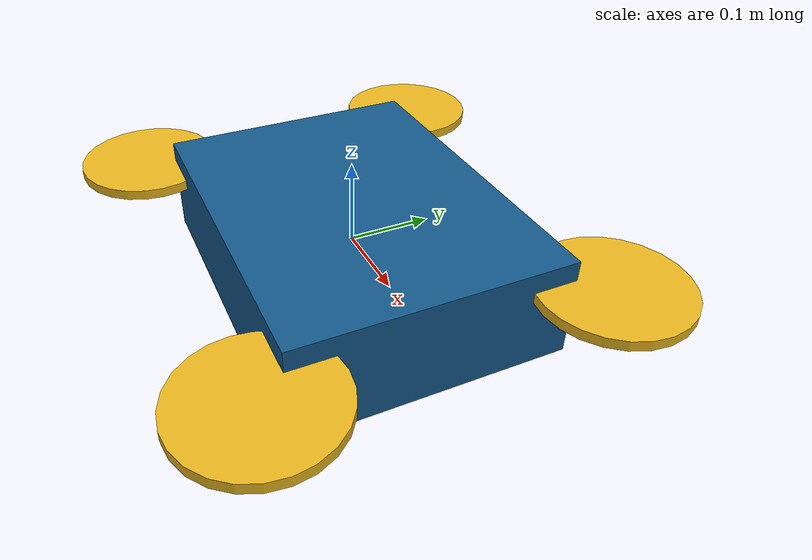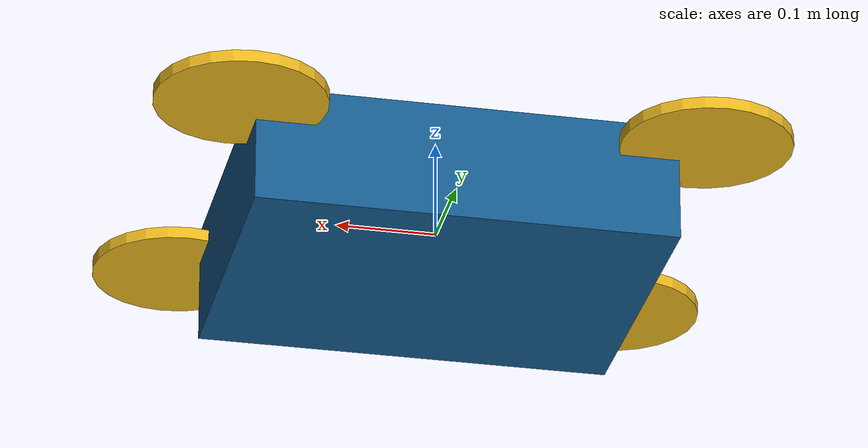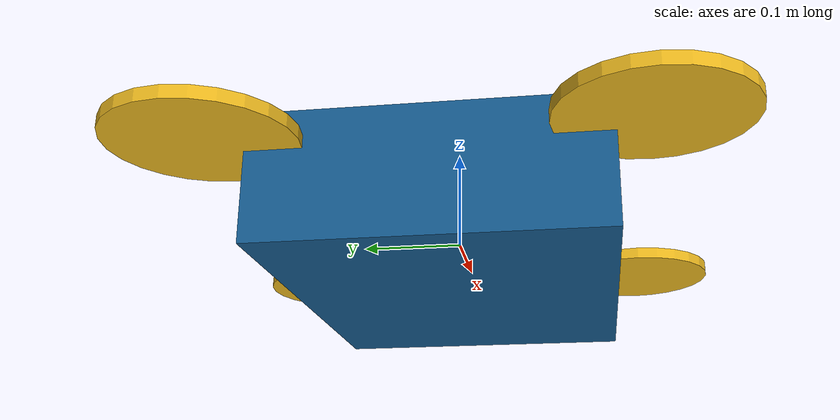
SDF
<?xml version="1.0" ?>
<sdf version="1.8">
  <model name="ed_quadrotor">
    <pose>0 0 0 0 0 0</pose>
    <link name="base_link">
      <inertial>
        <mass>1.5</mass>
        <inertia>
          <ixx>0.035</ixx><iyy>0.035</iyy><izz>0.065</izz>
          <ixy>0</ixy><ixz>0</ixz><iyz>0</iyz>
        </inertia>
      </inertial>
      <collision name="body_collision">
        <geometry><box><size>0.42 0.32 0.12</size></box></geometry>
      </collision>
      <visual name="body_visual">
        <geometry><box><size>0.42 0.32 0.12</size></box></geometry>
        <material><ambient>0.06 0.18 0.28 1</ambient><diffuse>0.08 0.35 0.55 1</diffuse></material>
      </visual>
      <sensor name="narrow_camera" type="camera">
        <!-- Camera placed well outside body box (0.42x0.32x0.12) to avoid occlusion -->
        <pose>0.28 0.22 -0.10 0 1.5708 0</pose>
        <always_on>true</always_on><update_rate>15</update_rate><visualize>true</visualize>
        <topic>/camera/narrow/image_raw</topic>
        <ignition_frame_id>camera_narrow_optical_frame</ignition_frame_id>
        <camera>
          <horizontal_fov>1.05</horizontal_fov>
          <camera_info_topic>/camera/narrow/camera_info</camera_info_topic>
          <image><width>1280</width><height>960</height><format>R8G8B8</format></image>
          <clip><near>0.05</near><far>80</far></clip>
        </camera>
      </sensor>
      <sensor name="wide_camera" type="camera">
        <pose>-0.28 -0.22 -0.10 0 1.5708 0</pose>
        <always_on>true</always_on><update_rate>10</update_rate><visualize>true</visualize>
        <topic>/camera/wide/image_raw</topic>
        <ignition_frame_id>camera_wide_optical_frame</ignition_frame_id>
        <camera>
          <horizontal_fov>1.75</horizontal_fov>
          <camera_info_topic>/camera/wide/camera_info</camera_info_topic>
          <image><width>1280</width><height>720</height><format>R8G8B8</format></image>
          <clip><near>0.05</near><far>80</far></clip>
        </camera>
      </sensor>
      <sensor name="lidar" type="gpu_lidar">
        <pose>0.12 0 0.08 0 0 0</pose>
        <always_on>true</always_on><update_rate>10</update_rate><visualize>true</visualize>
        <topic>/lidar/points</topic>
        <ignition_frame_id>lidar_link</ignition_frame_id>
        <ray>
          <scan><horizontal><samples>360</samples><resolution>1</resolution><min_angle>-3.14159</min_angle><max_angle>3.14159</max_angle></horizontal><vertical><samples>1</samples><resolution>1</resolution><min_angle>0</min_angle><max_angle>0</max_angle></vertical></scan>
          <range><min>0.15</min><max>30</max><resolution>0.02</resolution></range>
        </ray>
      </sensor>
      <sensor name="lidar_imu" type="imu">
        <pose>0.12 0 0.08 0 0 0</pose>
        <always_on>true</always_on><update_rate>100</update_rate>
        <topic>/lidar/imu</topic>
        <ignition_frame_id>lidar_link</ignition_frame_id>
      </sensor>
      <sensor name="rangefinder" type="ray">
        <!-- Gazebo ray axis is +X; +90deg pitch points it down along -Z. -->
        <pose>0 0 -0.10 0 1.5708 0</pose>
        <always_on>true</always_on><update_rate>20</update_rate>
        <topic>/rangefinder/range</topic>
        <ray><scan><horizontal><samples>1</samples><resolution>1</resolution><min_angle>0</min_angle><max_angle>0</max_angle></horizontal></scan><range><min>0.08</min><max>8.0</max><resolution>0.01</resolution></range></ray>
      </sensor>
    </link>

    <link name="rotor_0"><pose>0.23 0.19 0.03 0 0 0</pose><inertial><mass>0.02</mass><inertia><ixx>0.00001</ixx><iyy>0.00001</iyy><izz>0.00001</izz><ixy>0</ixy><ixz>0</ixz><iyz>0</iyz></inertia></inertial><visual name="rotor_0_visual"><geometry><cylinder><radius>0.085</radius><length>0.012</length></cylinder></geometry><material><diffuse>0.92 0.72 0.12 1</diffuse></material></visual></link>
    <link name="rotor_1"><pose>-0.23 -0.19 0.03 0 0 0</pose><inertial><mass>0.02</mass><inertia><ixx>0.00001</ixx><iyy>0.00001</iyy><izz>0.00001</izz><ixy>0</ixy><ixz>0</ixz><iyz>0</iyz></inertia></inertial><visual name="rotor_1_visual"><geometry><cylinder><radius>0.085</radius><length>0.012</length></cylinder></geometry><material><diffuse>0.92 0.72 0.12 1</diffuse></material></visual></link>
    <link name="rotor_2"><pose>0.23 -0.19 0.03 0 0 0</pose><inertial><mass>0.02</mass><inertia><ixx>0.00001</ixx><iyy>0.00001</iyy><izz>0.00001</izz><ixy>0</ixy><ixz>0</ixz><iyz>0</iyz></inertia></inertial><visual name="rotor_2_visual"><geometry><cylinder><radius>0.085</radius><length>0.012</length></cylinder></geometry><material><diffuse>0.92 0.72 0.12 1</diffuse></material></visual></link>
    <link name="rotor_3"><pose>-0.23 0.19 0.03 0 0 0</pose><inertial><mass>0.02</mass><inertia><ixx>0.00001</ixx><iyy>0.00001</iyy><izz>0.00001</izz><ixy>0</ixy><ixz>0</ixz><iyz>0</iyz></inertia></inertial><visual name="rotor_3_visual"><geometry><cylinder><radius>0.085</radius><length>0.012</length></cylinder></geometry><material><diffuse>0.92 0.72 0.12 1</diffuse></material></visual></link>

    <joint name="rotor_0_joint" type="revolute"><parent>base_link</parent><child>rotor_0</child><axis><xyz>0 0 1</xyz></axis></joint>
    <joint name="rotor_1_joint" type="revolute"><parent>base_link</parent><child>rotor_1</child><axis><xyz>0 0 1</xyz></axis></joint>
    <joint name="rotor_2_joint" type="revolute"><parent>base_link</parent><child>rotor_2</child><axis><xyz>0 0 1</xyz></axis></joint>
    <joint name="rotor_3_joint" type="revolute"><parent>base_link</parent><child>rotor_3</child><axis><xyz>0 0 1</xyz></axis></joint>

    <plugin filename="ignition-gazebo-multicopter-control-system" name="ignition::gazebo::systems::MulticopterVelocityControl">
      <robotNamespace>ed_quadrotor</robotNamespace><commandSubTopic>simulation/cmd_vel</commandSubTopic><enableSubTopic>simulation/enable</enableSubTopic><comLinkName>base_link</comLinkName>
      <com>0 0 -0.15</com><velocityGain>6 6 6</velocityGain><attitudeGain>4 4 4</attitudeGain><angularRateGain>0.5 0.5 0.5</angularRateGain>
      <maximumLinearAcceleration>2 2 2</maximumLinearAcceleration>
      <rotorConfiguration>
        <rotor><jointName>rotor_0_joint</jointName><forceConstant>8.54858e-06</forceConstant><momentConstant>0.016</momentConstant><direction>1</direction></rotor>
        <rotor><jointName>rotor_1_joint</jointName><forceConstant>8.54858e-06</forceConstant><momentConstant>0.016</momentConstant><direction>1</direction></rotor>
        <rotor><jointName>rotor_2_joint</jointName><forceConstant>8.54858e-06</forceConstant><momentConstant>0.016</momentConstant><direction>-1</direction></rotor>
        <rotor><jointName>rotor_3_joint</jointName><forceConstant>8.54858e-06</forceConstant><momentConstant>0.016</momentConstant><direction>-1</direction></rotor>
      </rotorConfiguration>
    </plugin>
    <plugin filename="ignition-gazebo-multicopter-motor-model-system" name="ignition::gazebo::systems::MulticopterMotorModel"><robotNamespace>ed_quadrotor</robotNamespace><jointName>rotor_0_joint</jointName><linkName>rotor_0</linkName><turningDirection>ccw</turningDirection><timeConstantUp>0.0125</timeConstantUp><timeConstantDown>0.025</timeConstantDown><motorNumber>0</motorNumber><commandSubTopic>motor_speed</commandSubTopic><maxRotVelocity>800</maxRotVelocity><motorConstant>8.54858e-06</motorConstant><momentConstant>0.016</momentConstant><rotorDragCoefficient>8.06428e-05</rotorDragCoefficient><rollingMomentCoefficient>1e-06</rollingMomentCoefficient><rotorVelocitySlowdownSim>10</rotorVelocitySlowdownSim><motorType>velocity</motorType></plugin>
    <plugin filename="ignition-gazebo-multicopter-motor-model-system" name="ignition::gazebo::systems::MulticopterMotorModel"><robotNamespace>ed_quadrotor</robotNamespace><jointName>rotor_1_joint</jointName><linkName>rotor_1</linkName><turningDirection>ccw</turningDirection><timeConstantUp>0.0125</timeConstantUp><timeConstantDown>0.025</timeConstantDown><motorNumber>1</motorNumber><commandSubTopic>motor_speed</commandSubTopic><maxRotVelocity>800</maxRotVelocity><motorConstant>8.54858e-06</motorConstant><momentConstant>0.016</momentConstant><rotorDragCoefficient>8.06428e-05</rotorDragCoefficient><rollingMomentCoefficient>1e-06</rollingMomentCoefficient><rotorVelocitySlowdownSim>10</rotorVelocitySlowdownSim><motorType>velocity</motorType></plugin>
    <plugin filename="ignition-gazebo-multicopter-motor-model-system" name="ignition::gazebo::systems::MulticopterMotorModel"><robotNamespace>ed_quadrotor</robotNamespace><jointName>rotor_2_joint</jointName><linkName>rotor_2</linkName><turningDirection>cw</turningDirection><timeConstantUp>0.0125</timeConstantUp><timeConstantDown>0.025</timeConstantDown><motorNumber>2</motorNumber><commandSubTopic>motor_speed</commandSubTopic><maxRotVelocity>800</maxRotVelocity><motorConstant>8.54858e-06</motorConstant><momentConstant>0.016</momentConstant><rotorDragCoefficient>8.06428e-05</rotorDragCoefficient><rollingMomentCoefficient>1e-06</rollingMomentCoefficient><rotorVelocitySlowdownSim>10</rotorVelocitySlowdownSim><motorType>velocity</motorType></plugin>
    <plugin filename="ignition-gazebo-multicopter-motor-model-system" name="ignition::gazebo::systems::MulticopterMotorModel"><robotNamespace>ed_quadrotor</robotNamespace><jointName>rotor_3_joint</jointName><linkName>rotor_3</linkName><turningDirection>cw</turningDirection><timeConstantUp>0.0125</timeConstantUp><timeConstantDown>0.025</timeConstantDown><motorNumber>3</motorNumber><commandSubTopic>motor_speed</commandSubTopic><maxRotVelocity>800</maxRotVelocity><motorConstant>8.54858e-06</motorConstant><momentConstant>0.016</momentConstant><rotorDragCoefficient>8.06428e-05</rotorDragCoefficient><rollingMomentCoefficient>1e-06</rollingMomentCoefficient><rotorVelocitySlowdownSim>10</rotorVelocitySlowdownSim><motorType>velocity</motorType></plugin>
    <plugin filename="ignition-gazebo-odometry-publisher-system" name="ignition::gazebo::systems::OdometryPublisher"><odom_topic>/simulation/ground_truth/odom</odom_topic><odom_frame>odom</odom_frame><robot_base_frame>base_link</robot_base_frame><dimensions>3</dimensions></plugin>
  </model>
</sdf>
